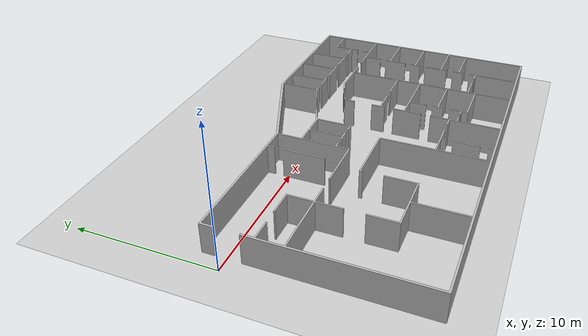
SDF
<?xml version="1.0" ?>
<sdf version="1.4">
  <world name="default">
    <physics type="ode">
      <gravity>0 0 -9.8</gravity>
      <ode>
        <solver>
          <type>quick</type>
          <iters>20</iters>
          <sor>1.0</sor>
        </solver>
        <constraints>
          <cfm>0.0</cfm>
          <erp>0.2</erp>
          <contact_max_correcting_vel>100.0</contact_max_correcting_vel>
          <contact_surface_layer>0.0</contact_surface_layer>
        </constraints>
      </ode>
      <max_step_size>0.001</max_step_size>
    </physics>
    <!-- A global light source -->
    <include>
      <uri>model://sun</uri>
    </include>
    <!-- A ground plane -->
    <include>
      <uri>model://ground_plane</uri>
    </include>
<model name="my_building">
      <pose>0 0 0 0 0 0</pose>
      <static>true</static>
      <link name="building">
        <visual name="visual">
          <geometry>
            <mesh><uri>model://ed_pmov/worlds/models/building/building.dae</uri></mesh>
          </geometry>
        </visual>
      </link>
    </model>
  </world>
</sdf>
